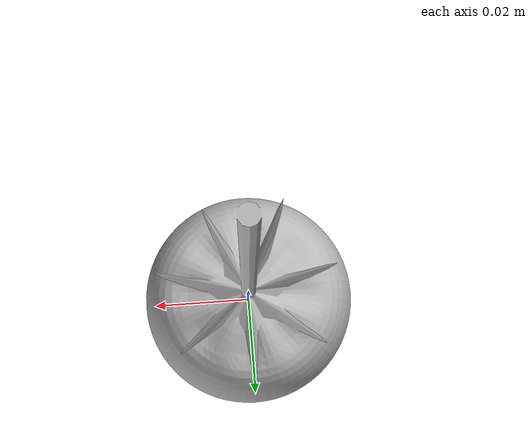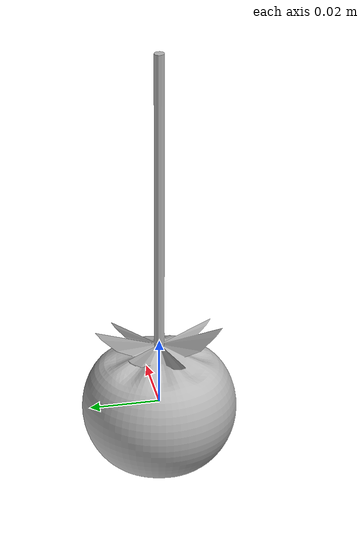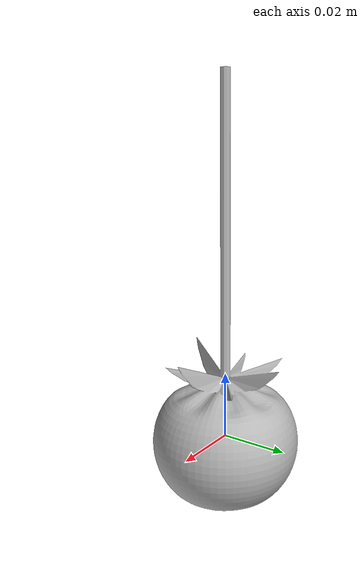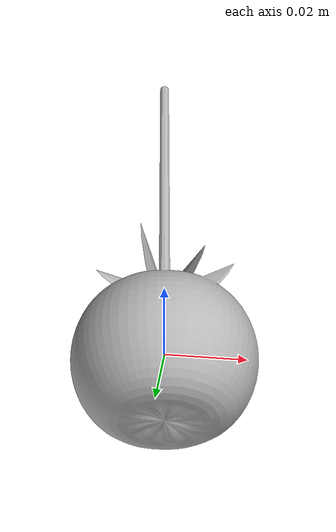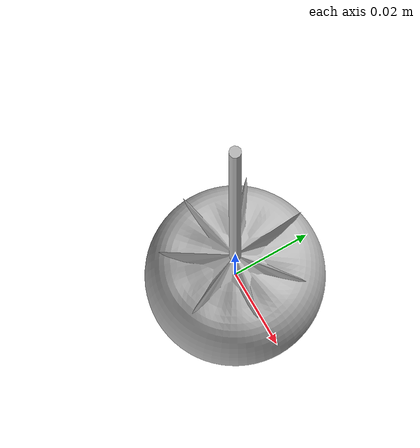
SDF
<?xml version="1.0"?>
<sdf version="1.6">
    <model name="green_tomato">
      <link name="tomato_link">
        <visual name="visual">
          <geometry>
            <mesh><uri>model://green_tomato/meshes/green_tomato.obj</uri></mesh>
          </geometry>
        </visual>
        <collision name="collision">
          <geometry>
            <mesh><uri>model://green_tomato/meshes/green_tomato.obj</uri></mesh>
          </geometry>
        </collision>
      </link>
    </model>
</sdf>
